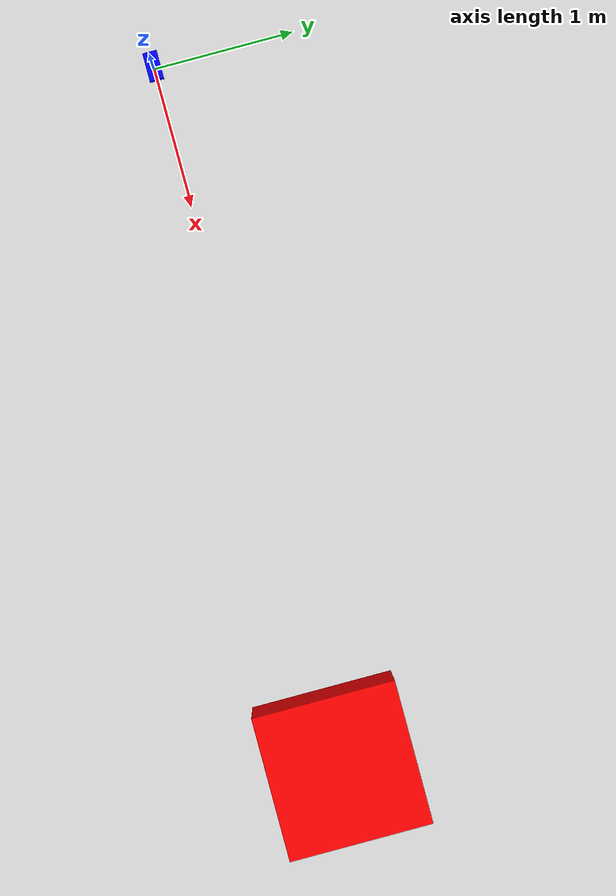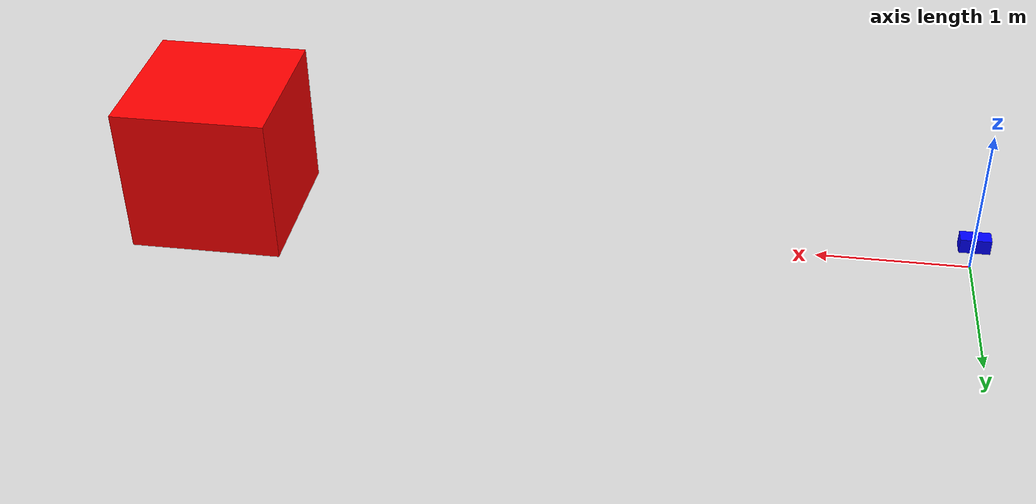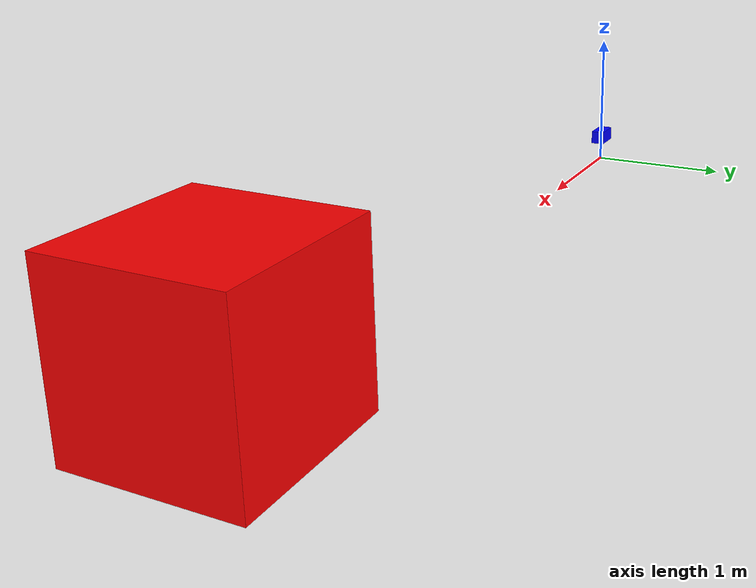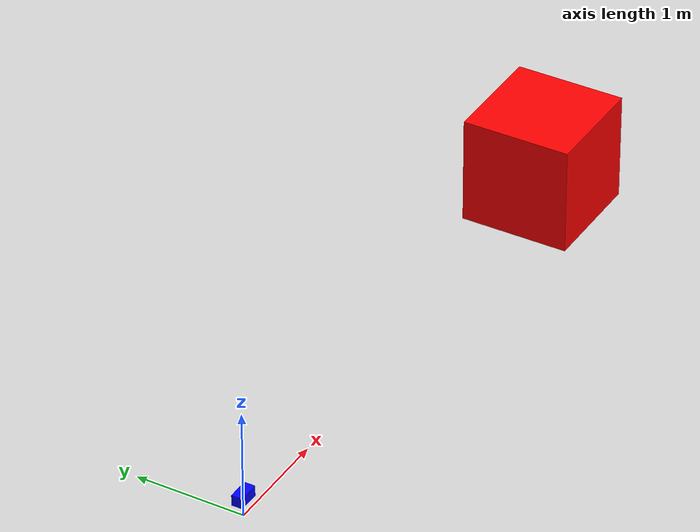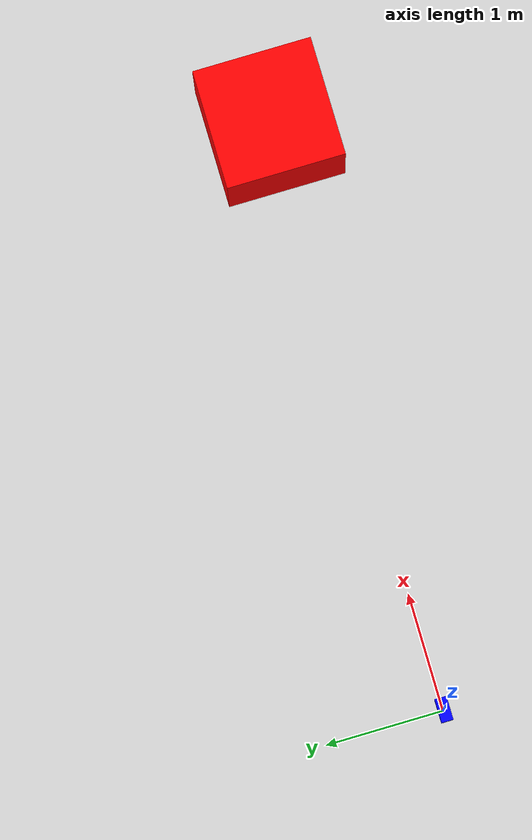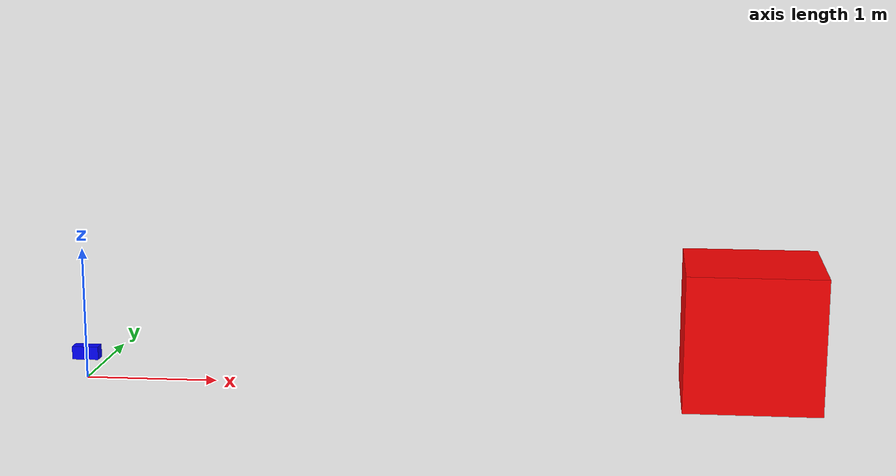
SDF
<?xml version="1.0"?>
<sdf version="1.10">
    <world name="ultrasonic_lidar_world">

        <physics name="1ms" type="ignored">
            <max_step_size>0.001</max_step_size>
            <real_time_factor>1.0</real_time_factor>
        </physics>

        <plugin
            filename="gz-sim-physics-system"
            name="gz::sim::systems::Physics" />
        <plugin
            filename="gz-sim-sensors-system"
            name="gz::sim::systems::Sensors">
            <render_engine>ogre2</render_engine>
        </plugin>
        <plugin
            filename="gz-sim-scene-broadcaster-system"
            name="gz::sim::systems::SceneBroadcaster" />

        <light name="sun" type="directional">
            <pose>0 0 10 0 0 0</pose>
            <diffuse>0.8 0.8 0.8 1</diffuse>
            <specular>0.2 0.2 0.2 1</specular>
            <direction>-0.5 0.1 -0.9</direction>
        </light>

        <model name="sensor_model">
            <static>true</static>
            <pose>0 0 0 0 0 0</pose>

            <link name="sensor_link">
                <pose>0 0 0.2 0 0 0</pose>

                <visual name="sensor_visual">
                    <geometry>
                        <box>
                            <size>0.2 0.1 0.1</size>
                        </box>
                    </geometry>
                    <material>
                        <diffuse>0 0 1 1</diffuse>
                    </material>
                </visual>

                <collision name="sensor_collision">
                    <geometry>
                        <box>
                            <size>0.2 0.1 0.1</size>
                        </box>
                    </geometry>
                </collision>

                <!-- Ultrasonic-like sensor using CPU lidar rays -->
                <sensor name="ultrasonic_lidar" type="gpu_lidar">
                    <pose>0 0 0 0 0 0</pose>
                    <always_on>1</always_on>
                    <update_rate>20</update_rate>
                    <visualize>true</visualize>
                    <topic>ultrasonic_lidar</topic>

                    <ray>
                        <scan>
                            <horizontal>
                                <samples>5</samples>
                                <resolution>1</resolution>
                                <min_angle>-0.26</min_angle>
                                <max_angle>0.26</max_angle>
                            </horizontal>
                            <vertical>
                                <samples>3</samples>
                                <resolution>1</resolution>
                                <min_angle>-0.10</min_angle>
                                <max_angle>0.10</max_angle>
                            </vertical>
                        </scan>

                        <range>
                            <min>0.02</min>
                            <max>10.0</max>
                            <resolution>0.01</resolution>
                        </range>
                    </ray>
                </sensor>
            </link>
        </model>

        <!-- Box 5 meters in front of the sensor along +X -->
        <model name="target_box">
            <static>true</static>
            <pose>5 0 0.5 0 0 0</pose>

            <link name="box_link">
                <collision name="collision">
                    <geometry>
                        <box>
                            <size>1 1 1</size>
                        </box>
                    </geometry>
                </collision>

                <visual name="visual">
                    <geometry>
                        <box>
                            <size>1 1 1</size>
                        </box>
                    </geometry>
                    <material>
                        <diffuse>1 0 0 1</diffuse>
                    </material>
                </visual>
            </link>
        </model>

    </world>
</sdf>
